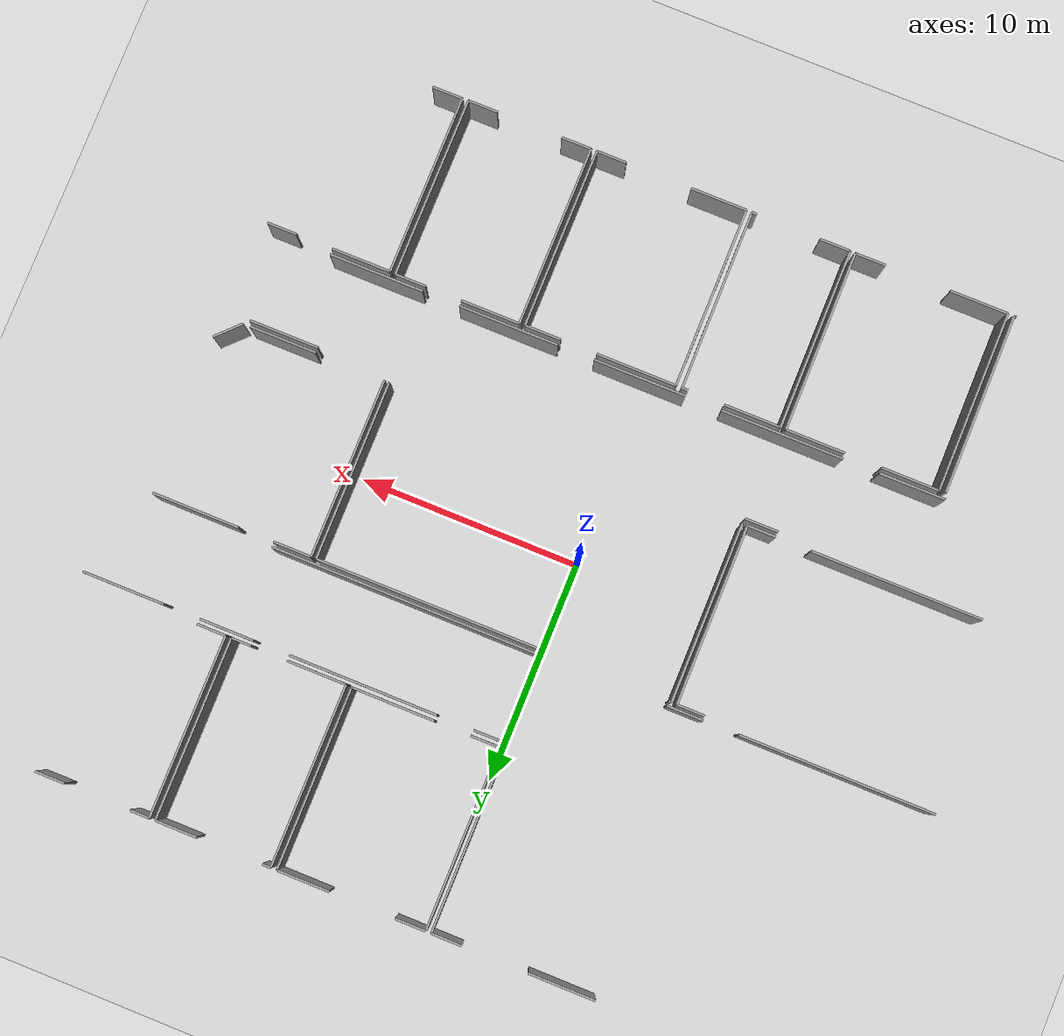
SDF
<sdf version="1.6">
 <world name="default">
  <model name="ground_plane">
   <static>1</static>
   <link name="link">
    <collision name="collision">
     <geometry><plane><normal>0 0 1</normal><size>100 100</size></plane></geometry>
     <surface><friction><ode><mu>100</mu><mu2>50</mu2></ode></friction></surface>
    </collision>
    <visual name="visual">
     <cast_shadows>0</cast_shadows>
     <geometry><plane><normal>0 0 1</normal><size>100 100</size></plane></geometry>
     <material>
      <script><uri>file://media/materials/scripts/gazebo.material</uri><name>Gazebo/Grey</name></script>
     </material>
    </visual>
   </link>
  </model>
  <model name="50041173">
   <static>1</static>
   <link name="Wall_38">
    <collision name="Wall_38_Collision">
     <geometry><box><size>1.65096854452 0.1 2.5</size></box></geometry>
     <pose>0.825484272259 0 1.25 0 0 0</pose>
    </collision>
    <visual name="Wall_38_Visual">
     <pose>0.825484272259 0 1.25 0 0 0</pose>
     <geometry><box><size>1.65096854452 0.1 2.5</size></box></geometry>
     <material>
      <script><uri>file://media/materials/scripts/gazebo.material</uri><name>Gazebo/Grey</name></script>
      <ambient>1 1 1 1</ambient>
     </material>
    </visual>
    <pose>59.8844855163 -12.4957475437 0 0 0 3.14159265359</pose>
   </link>
   <link name="Wall_39">
    <collision name="Wall_39_Collision">
     <geometry><box><size>8.8579298789 0.1 2.5</size></box></geometry>
     <pose>4.42896493945 0 1.25 0 0 0</pose>
    </collision>
    <visual name="Wall_39_Visual">
     <pose>4.42896493945 0 1.25 0 0 0</pose>
     <geometry><box><size>8.8579298789 0.1 2.5</size></box></geometry>
     <material>
      <script><uri>file://media/materials/scripts/gazebo.material</uri><name>Gazebo/Grey</name></script>
      <ambient>1 1 1 1</ambient>
     </material>
    </visual>
    <pose>56.622915027 -12.4957475437 0 0 0 3.14159265359</pose>
   </link>
   <link name="Wall_43">
    <collision name="Wall_43_Collision">
     <geometry><box><size>3.01200842875 0.1 2.5</size></box></geometry>
     <pose>1.50600421437 0 1.25 0 0 0</pose>
    </collision>
    <visual name="Wall_43_Visual">
     <pose>1.50600421437 0 1.25 0 0 0</pose>
     <geometry><box><size>3.01200842875 0.1 2.5</size></box></geometry>
     <material>
      <script><uri>file://media/materials/scripts/gazebo.material</uri><name>Gazebo/Grey</name></script>
      <ambient>1 1 1 1</ambient>
     </material>
    </visual>
    <pose>58.1233339257 -0.0191677879611 0 0 0 0.0</pose>
   </link>
   <link name="Wall_44">
    <collision name="Wall_44_Collision">
     <geometry><box><size>1.38617380487 0.1 2.5</size></box></geometry>
     <pose>0.693086902435 0 1.25 0 0 0</pose>
    </collision>
    <visual name="Wall_44_Visual">
     <pose>0.693086902435 0 1.25 0 0 0</pose>
     <geometry><box><size>1.38617380487 0.1 2.5</size></box></geometry>
     <material>
      <script><uri>file://media/materials/scripts/gazebo.material</uri><name>Gazebo/Grey</name></script>
      <ambient>1 1 1 1</ambient>
     </material>
    </visual>
    <pose>64.1182817538 -0.0191677879611 0 0 0 0.0</pose>
   </link>
   <link name="Wall_45">
    <collision name="Wall_45_Collision">
     <geometry><box><size>8.43700017771 0.1 2.5</size></box></geometry>
     <pose>4.21850008886 0 1.25 0 0 0</pose>
    </collision>
    <visual name="Wall_45_Visual">
     <pose>4.21850008886 0 1.25 0 0 0</pose>
     <geometry><box><size>8.43700017771 0.1 2.5</size></box></geometry>
     <material>
      <script><uri>file://media/materials/scripts/gazebo.material</uri><name>Gazebo/Grey</name></script>
      <ambient>1 1 1 1</ambient>
     </material>
    </visual>
    <pose>65.5044555587 -0.0191677879611 0 0 0 -1.57079632679</pose>
   </link>
   <link name="Wall_54">
    <collision name="Wall_54_Collision">
     <geometry><box><size>12.1599939069 0.1 2.5</size></box></geometry>
     <pose>6.07999695346 0 1.25 0 0 0</pose>
    </collision>
    <visual name="Wall_54_Visual">
     <pose>6.07999695346 0 1.25 0 0 0</pose>
     <geometry><box><size>12.1599939069 0.1 2.5</size></box></geometry>
     <material>
      <script><uri>file://media/materials/scripts/gazebo.material</uri><name>Gazebo/Grey</name></script>
      <ambient>1 1 1 1</ambient>
     </material>
    </visual>
    <pose>77.9039833456 -12.4624895275 0 0 0 3.14159265359</pose>
   </link>
   <link name="Wall_55">
    <collision name="Wall_55_Collision">
     <geometry><box><size>1.31432633476 0.1 2.5</size></box></geometry>
     <pose>0.657163167382 0 1.25 0 0 0</pose>
    </collision>
    <visual name="Wall_55_Visual">
     <pose>0.657163167382 0 1.25 0 0 0</pose>
     <geometry><box><size>1.31432633476 0.1 2.5</size></box></geometry>
     <material>
      <script><uri>file://media/materials/scripts/gazebo.material</uri><name>Gazebo/Grey</name></script>
      <ambient>1 1 1 1</ambient>
     </material>
    </visual>
    <pose>65.7439894387 -8.49577293153 0 0 0 0.0</pose>
   </link>
   <link name="Wall_56">
    <collision name="Wall_56_Collision">
     <geometry><box><size>6.72840133032 0.1 2.5</size></box></geometry>
     <pose>3.36420066516 0 1.25 0 0 0</pose>
    </collision>
    <visual name="Wall_56_Visual">
     <pose>3.36420066516 0 1.25 0 0 0</pose>
     <geometry><box><size>6.72840133032 0.1 2.5</size></box></geometry>
     <material>
      <script><uri>file://media/materials/scripts/gazebo.material</uri><name>Gazebo/Grey</name></script>
      <ambient>1 1 1 1</ambient>
     </material>
    </visual>
    <pose>68.7246439361 -8.49577293153 0 0 0 0.0</pose>
   </link>
   <link name="Wall_57">
    <collision name="Wall_57_Collision">
     <geometry><box><size>2.46655157531 0.1 2.5</size></box></geometry>
     <pose>1.23327578766 0 1.25 0 0 0</pose>
    </collision>
    <visual name="Wall_57_Visual">
     <pose>1.23327578766 0 1.25 0 0 0</pose>
     <geometry><box><size>2.46655157531 0.1 2.5</size></box></geometry>
     <material>
      <script><uri>file://media/materials/scripts/gazebo.material</uri><name>Gazebo/Grey</name></script>
      <ambient>1 1 1 1</ambient>
     </material>
    </visual>
    <pose>77.0877656198 -8.49577293153 0 0 0 0.0</pose>
   </link>
   <link name="Wall_58">
    <collision name="Wall_58_Collision">
     <geometry><box><size>3.72261291223 0.1 2.5</size></box></geometry>
     <pose>1.86130645612 0 1.25 0 0 0</pose>
    </collision>
    <visual name="Wall_58_Visual">
     <pose>1.86130645612 0 1.25 0 0 0</pose>
     <geometry><box><size>3.72261291223 0.1 2.5</size></box></geometry>
     <material>
      <script><uri>file://media/materials/scripts/gazebo.material</uri><name>Gazebo/Grey</name></script>
      <ambient>1 1 1 1</ambient>
     </material>
    </visual>
    <pose>81.2008428749 -8.49577293153 0 0 0 0.0</pose>
   </link>
   <link name="Wall_66">
    <collision name="Wall_66_Collision">
     <geometry><box><size>3.76285257305 0.1 2.5</size></box></geometry>
     <pose>1.88142628653 0 1.25 0 0 0</pose>
    </collision>
    <visual name="Wall_66_Visual">
     <pose>1.88142628653 0 1.25 0 0 0</pose>
     <geometry><box><size>3.76285257305 0.1 2.5</size></box></geometry>
     <material>
      <script><uri>file://media/materials/scripts/gazebo.material</uri><name>Gazebo/Grey</name></script>
      <ambient>1 1 1 1</ambient>
     </material>
    </visual>
    <pose>72.4872426312 -8.23542105664 0 0 0 3.14159265359</pose>
   </link>
   <link name="Wall_67">
    <collision name="Wall_67_Collision">
     <geometry><box><size>1.3135647008 0.1 2.5</size></box></geometry>
     <pose>0.656782350402 0 1.25 0 0 0</pose>
    </collision>
    <visual name="Wall_67_Visual">
     <pose>0.656782350402 0 1.25 0 0 0</pose>
     <geometry><box><size>1.3135647008 0.1 2.5</size></box></geometry>
     <material>
      <script><uri>file://media/materials/scripts/gazebo.material</uri><name>Gazebo/Grey</name></script>
      <ambient>1 1 1 1</ambient>
     </material>
    </visual>
    <pose>67.0650435401 -8.23542105664 0 0 0 3.14159265359</pose>
   </link>
   <link name="Wall_68">
    <collision name="Wall_68_Collision">
     <geometry><box><size>8.22183858438 0.1 2.5</size></box></geometry>
     <pose>4.11091929219 0 1.25 0 0 0</pose>
    </collision>
    <visual name="Wall_68_Visual">
     <pose>4.11091929219 0 1.25 0 0 0</pose>
     <geometry><box><size>8.22183858438 0.1 2.5</size></box></geometry>
     <material>
      <script><uri>file://media/materials/scripts/gazebo.material</uri><name>Gazebo/Grey</name></script>
      <ambient>1 1 1 1</ambient>
     </material>
    </visual>
    <pose>65.7514788393 -8.23542105664 0 0 0 1.57079632679</pose>
   </link>
   <link name="Wall_69">
    <collision name="Wall_69_Collision">
     <geometry><box><size>1.38883952372 0.1 2.5</size></box></geometry>
     <pose>0.694419761862 0 1.25 0 0 0</pose>
    </collision>
    <visual name="Wall_69_Visual">
     <pose>0.694419761862 0 1.25 0 0 0</pose>
     <geometry><box><size>1.38883952372 0.1 2.5</size></box></geometry>
     <material>
      <script><uri>file://media/materials/scripts/gazebo.material</uri><name>Gazebo/Grey</name></script>
      <ambient>1 1 1 1</ambient>
     </material>
    </visual>
    <pose>65.7514788393 -0.0135824722638 0 0 0 0.0</pose>
   </link>
   <link name="Wall_70">
    <collision name="Wall_70_Collision">
     <geometry><box><size>2.36665058773 0.1 2.5</size></box></geometry>
     <pose>1.18332529386 0 1.25 0 0 0</pose>
    </collision>
    <visual name="Wall_70_Visual">
     <pose>1.18332529386 0 1.25 0 0 0</pose>
     <geometry><box><size>2.36665058773 0.1 2.5</size></box></geometry>
     <material>
      <script><uri>file://media/materials/scripts/gazebo.material</uri><name>Gazebo/Grey</name></script>
      <ambient>1 1 1 1</ambient>
     </material>
    </visual>
    <pose>70.1065018152 -0.0135824722638 0 0 0 0.0</pose>
   </link>
   <link name="Wall_71">
    <collision name="Wall_71_Collision">
     <geometry><box><size>8.22185065798 0.1 2.5</size></box></geometry>
     <pose>4.11092532899 0 1.25 0 0 0</pose>
    </collision>
    <visual name="Wall_71_Visual">
     <pose>4.11092532899 0 1.25 0 0 0</pose>
     <geometry><box><size>8.22185065798 0.1 2.5</size></box></geometry>
     <material>
      <script><uri>file://media/materials/scripts/gazebo.material</uri><name>Gazebo/Grey</name></script>
      <ambient>1 1 1 1</ambient>
     </material>
    </visual>
    <pose>72.473152403 -0.0135824722638 0 0 0 -1.5690825721</pose>
   </link>
   <link name="Wall_72">
    <collision name="Wall_72_Collision">
     <geometry><box><size>0.894031328544 0.1 2.5</size></box></geometry>
     <pose>0.447015664272 0 1.25 0 0 0</pose>
    </collision>
    <visual name="Wall_72_Visual">
     <pose>0.447015664272 0 1.25 0 0 0</pose>
     <geometry><box><size>0.894031328544 0.1 2.5</size></box></geometry>
     <material>
      <script><uri>file://media/materials/scripts/gazebo.material</uri><name>Gazebo/Grey</name></script>
      <ambient>1 1 1 1</ambient>
     </material>
    </visual>
    <pose>77.9928406408 -8.25319251568 0 0 0 3.14159265359</pose>
   </link>
   <link name="Wall_73">
    <collision name="Wall_73_Collision">
     <geometry><box><size>2.70380055345 0.1 2.5</size></box></geometry>
     <pose>1.35190027673 0 1.25 0 0 0</pose>
    </collision>
    <visual name="Wall_73_Visual">
     <pose>1.35190027673 0 1.25 0 0 0</pose>
     <geometry><box><size>2.70380055345 0.1 2.5</size></box></geometry>
     <material>
      <script><uri>file://media/materials/scripts/gazebo.material</uri><name>Gazebo/Grey</name></script>
      <ambient>1 1 1 1</ambient>
     </material>
    </visual>
    <pose>75.4540607784 -8.25319251568 0 0 0 3.14159265359</pose>
   </link>
   <link name="Wall_74">
    <collision name="Wall_74_Collision">
     <geometry><box><size>8.2435451522 0.1 2.5</size></box></geometry>
     <pose>4.1217725761 0 1.25 0 0 0</pose>
    </collision>
    <visual name="Wall_74_Visual">
     <pose>4.1217725761 0 1.25 0 0 0</pose>
     <geometry><box><size>8.2435451522 0.1 2.5</size></box></geometry>
     <material>
      <script><uri>file://media/materials/scripts/gazebo.material</uri><name>Gazebo/Grey</name></script>
      <ambient>1 1 1 1</ambient>
     </material>
    </visual>
    <pose>72.7502602249 -8.25319251568 0 0 0 1.57079632679</pose>
   </link>
   <link name="Wall_75">
    <collision name="Wall_75_Collision">
     <geometry><box><size>0.387925562974 0.1 2.5</size></box></geometry>
     <pose>0.193962781487 0 1.25 0 0 0</pose>
    </collision>
    <visual name="Wall_75_Visual">
     <pose>0.193962781487 0 1.25 0 0 0</pose>
     <geometry><box><size>0.387925562974 0.1 2.5</size></box></geometry>
     <material>
      <script><uri>file://media/materials/scripts/gazebo.material</uri><name>Gazebo/Grey</name></script>
      <ambient>1 1 1 1</ambient>
     </material>
    </visual>
    <pose>72.7502602249 -0.00964736347711 0 0 0 0.0</pose>
   </link>
   <link name="Wall_76">
    <collision name="Wall_76_Collision">
     <geometry><box><size>1.88237832898 0.1 2.5</size></box></geometry>
     <pose>0.941189164488 0 1.25 0 0 0</pose>
    </collision>
    <visual name="Wall_76_Visual">
     <pose>0.941189164488 0 1.25 0 0 0</pose>
     <geometry><box><size>1.88237832898 0.1 2.5</size></box></geometry>
     <material>
      <script><uri>file://media/materials/scripts/gazebo.material</uri><name>Gazebo/Grey</name></script>
      <ambient>1 1 1 1</ambient>
     </material>
    </visual>
    <pose>76.1042423012 -0.00964736347711 0 0 0 0.0</pose>
   </link>
   <link name="Wall_77">
    <collision name="Wall_77_Collision">
     <geometry><box><size>8.2435474988 0.1 2.5</size></box></geometry>
     <pose>4.1217737494 0 1.25 0 0 0</pose>
    </collision>
    <visual name="Wall_77_Visual">
     <pose>4.1217737494 0 1.25 0 0 0</pose>
     <geometry><box><size>8.2435474988 0.1 2.5</size></box></geometry>
     <material>
      <script><uri>file://media/materials/scripts/gazebo.material</uri><name>Gazebo/Grey</name></script>
      <ambient>1 1 1 1</ambient>
     </material>
    </visual>
    <pose>77.9866206301 -0.00964736347711 0 0 0 -1.5700417959</pose>
   </link>
   <link name="Wall_79">
    <collision name="Wall_79_Collision">
     <geometry><box><size>1.3135647008 0.1 2.5</size></box></geometry>
     <pose>0.656782350402 0 1.25 0 0 0</pose>
    </collision>
    <visual name="Wall_79_Visual">
     <pose>0.656782350402 0 1.25 0 0 0</pose>
     <geometry><box><size>1.3135647008 0.1 2.5</size></box></geometry>
     <material>
      <script><uri>file://media/materials/scripts/gazebo.material</uri><name>Gazebo/Grey</name></script>
      <ambient>1 1 1 1</ambient>
     </material>
    </visual>
    <pose>79.5713270202 -8.25319251568 0 0 0 3.14159265359</pose>
   </link>
   <link name="Wall_80">
    <collision name="Wall_80_Collision">
     <geometry><box><size>8.24989210186 0.1 2.5</size></box></geometry>
     <pose>4.12494605093 0 1.25 0 0 0</pose>
    </collision>
    <visual name="Wall_80_Visual">
     <pose>4.12494605093 0 1.25 0 0 0</pose>
     <geometry><box><size>8.24989210186 0.1 2.5</size></box></geometry>
     <material>
      <script><uri>file://media/materials/scripts/gazebo.material</uri><name>Gazebo/Grey</name></script>
      <ambient>1 1 1 1</ambient>
     </material>
    </visual>
    <pose>78.2577623194 -8.25319251568 0 0 0 1.57079632679</pose>
   </link>
   <link name="Wall_81">
    <collision name="Wall_81_Collision">
     <geometry><box><size>0.873213333672 0.1 2.5</size></box></geometry>
     <pose>0.436606666836 0 1.25 0 0 0</pose>
    </collision>
    <visual name="Wall_81_Visual">
     <pose>0.436606666836 0 1.25 0 0 0</pose>
     <geometry><box><size>0.873213333672 0.1 2.5</size></box></geometry>
     <material>
      <script><uri>file://media/materials/scripts/gazebo.material</uri><name>Gazebo/Grey</name></script>
      <ambient>1 1 1 1</ambient>
     </material>
    </visual>
    <pose>78.2577623194 -0.00330041382112 0 0 0 0.0</pose>
   </link>
   <link name="Wall_82">
    <collision name="Wall_82_Collision">
     <geometry><box><size>1.37170275965 0.1 2.5</size></box></geometry>
     <pose>0.685851379827 0 1.25 0 0 0</pose>
    </collision>
    <visual name="Wall_82_Visual">
     <pose>0.685851379827 0 1.25 0 0 0</pose>
     <geometry><box><size>1.37170275965 0.1 2.5</size></box></geometry>
     <material>
      <script><uri>file://media/materials/scripts/gazebo.material</uri><name>Gazebo/Grey</name></script>
      <ambient>1 1 1 1</ambient>
     </material>
    </visual>
    <pose>82.1102338216 -0.00330041382112 0 0 0 0.0</pose>
   </link>
   <link name="Wall_133">
    <collision name="Wall_133_Collision">
     <geometry><box><size>4.31592576608 0.1 2.5</size></box></geometry>
     <pose>2.15796288304 0 1.25 0 0 0</pose>
    </collision>
    <visual name="Wall_133_Visual">
     <pose>2.15796288304 0 1.25 0 0 0</pose>
     <geometry><box><size>4.31592576608 0.1 2.5</size></box></geometry>
     <material>
      <script><uri>file://media/materials/scripts/gazebo.material</uri><name>Gazebo/Grey</name></script>
      <ambient>1 1 1 1</ambient>
     </material>
    </visual>
    <pose>80.443270964 -25.056107035 0 0 0 3.14159265359</pose>
   </link>
   <link name="Wall_134">
    <collision name="Wall_134_Collision">
     <geometry><box><size>4.55926781589 0.1 2.5</size></box></geometry>
     <pose>2.27963390794 0 1.25 0 0 0</pose>
    </collision>
    <visual name="Wall_134_Visual">
     <pose>2.27963390794 0 1.25 0 0 0</pose>
     <geometry><box><size>4.55926781589 0.1 2.5</size></box></geometry>
     <material>
      <script><uri>file://media/materials/scripts/gazebo.material</uri><name>Gazebo/Grey</name></script>
      <ambient>1 1 1 1</ambient>
     </material>
    </visual>
    <pose>74.4452766001 -25.056107035 0 0 0 3.14159265359</pose>
   </link>
   <link name="Wall_135">
    <collision name="Wall_135_Collision">
     <geometry><box><size>4.206631293 0.1 2.5</size></box></geometry>
     <pose>2.1033156465 0 1.25 0 0 0</pose>
    </collision>
    <visual name="Wall_135_Visual">
     <pose>2.1033156465 0 1.25 0 0 0</pose>
     <geometry><box><size>4.206631293 0.1 2.5</size></box></geometry>
     <material>
      <script><uri>file://media/materials/scripts/gazebo.material</uri><name>Gazebo/Grey</name></script>
      <ambient>1 1 1 1</ambient>
     </material>
    </visual>
    <pose>68.2222194014 -25.056107035 0 0 0 3.14159265359</pose>
   </link>
   <link name="Wall_136">
    <collision name="Wall_136_Collision">
     <geometry><box><size>5.55738911879 0.1 2.5</size></box></geometry>
     <pose>2.77869455939 0 1.25 0 0 0</pose>
    </collision>
    <visual name="Wall_136_Visual">
     <pose>2.77869455939 0 1.25 0 0 0</pose>
     <geometry><box><size>5.55738911879 0.1 2.5</size></box></geometry>
     <material>
      <script><uri>file://media/materials/scripts/gazebo.material</uri><name>Gazebo/Grey</name></script>
      <ambient>1 1 1 1</ambient>
     </material>
    </visual>
    <pose>62.360811394 -25.056107035 0 0 0 3.14159265359</pose>
   </link>
   <link name="Wall_137">
    <collision name="Wall_137_Collision">
     <geometry><box><size>3.01340475767 0.1 2.5</size></box></geometry>
     <pose>1.50670237884 0 1.25 0 0 0</pose>
    </collision>
    <visual name="Wall_137_Visual">
     <pose>1.50670237884 0 1.25 0 0 0</pose>
     <geometry><box><size>3.01340475767 0.1 2.5</size></box></geometry>
     <material>
      <script><uri>file://media/materials/scripts/gazebo.material</uri><name>Gazebo/Grey</name></script>
      <ambient>1 1 1 1</ambient>
     </material>
    </visual>
    <pose>55.1438218792 -25.056107035 0 0 0 3.14159265359</pose>
   </link>
   <link name="Wall_154">
    <collision name="Wall_154_Collision">
     <geometry><box><size>1.50689278733 0.1 2.5</size></box></geometry>
     <pose>0.753446393663 0 1.25 0 0 0</pose>
    </collision>
    <visual name="Wall_154_Visual">
     <pose>0.753446393663 0 1.25 0 0 0</pose>
     <geometry><box><size>1.50689278733 0.1 2.5</size></box></geometry>
     <material>
      <script><uri>file://media/materials/scripts/gazebo.material</uri><name>Gazebo/Grey</name></script>
      <ambient>1 1 1 1</ambient>
     </material>
    </visual>
    <pose>58.2239965473 -21.1053847521 0 0 0 0.0</pose>
   </link>
   <link name="Wall_155">
    <collision name="Wall_155_Collision">
     <geometry><box><size>3.14999111427 0.1 2.5</size></box></geometry>
     <pose>1.57499555714 0 1.25 0 0 0</pose>
    </collision>
    <visual name="Wall_155_Visual">
     <pose>1.57499555714 0 1.25 0 0 0</pose>
     <geometry><box><size>3.14999111427 0.1 2.5</size></box></geometry>
     <material>
      <script><uri>file://media/materials/scripts/gazebo.material</uri><name>Gazebo/Grey</name></script>
      <ambient>1 1 1 1</ambient>
     </material>
    </visual>
    <pose>79.3812993475 -21.1053847521 0 0 0 0.0</pose>
   </link>
   <link name="Wall_194">
    <collision name="Wall_194_Collision">
     <geometry><box><size>1.38223869608 0.1 2.5</size></box></geometry>
     <pose>0.691119348041 0 1.25 0 0 0</pose>
    </collision>
    <visual name="Wall_194_Visual">
     <pose>0.691119348041 0 1.25 0 0 0</pose>
     <geometry><box><size>1.38223869608 0.1 2.5</size></box></geometry>
     <material>
      <script><uri>file://media/materials/scripts/gazebo.material</uri><name>Gazebo/Grey</name></script>
      <ambient>1 1 1 1</ambient>
     </material>
    </visual>
    <pose>79.1581405976 -33.5394399452 0 0 0 3.14159265359</pose>
   </link>
   <link name="Wall_195">
    <collision name="Wall_195_Collision">
     <geometry><box><size>8.22018837747 0.1 2.5</size></box></geometry>
     <pose>4.11009418873 0 1.25 0 0 0</pose>
    </collision>
    <visual name="Wall_195_Visual">
     <pose>4.11009418873 0 1.25 0 0 0</pose>
     <geometry><box><size>8.22018837747 0.1 2.5</size></box></geometry>
     <material>
      <script><uri>file://media/materials/scripts/gazebo.material</uri><name>Gazebo/Grey</name></script>
      <ambient>1 1 1 1</ambient>
     </material>
    </visual>
    <pose>77.7759019015 -33.5394399452 0 0 0 1.57079632679</pose>
   </link>
   <link name="Wall_196">
    <collision name="Wall_196_Collision">
     <geometry><box><size>2.68691766737 0.1 2.5</size></box></geometry>
     <pose>1.34345883368 0 1.25 0 0 0</pose>
    </collision>
    <visual name="Wall_196_Visual">
     <pose>1.34345883368 0 1.25 0 0 0</pose>
     <geometry><box><size>2.68691766737 0.1 2.5</size></box></geometry>
     <material>
      <script><uri>file://media/materials/scripts/gazebo.material</uri><name>Gazebo/Grey</name></script>
      <ambient>1 1 1 1</ambient>
     </material>
    </visual>
    <pose>77.7759019015 -25.3192515677 0 0 0 0.0</pose>
   </link>
   <link name="Wall_197">
    <collision name="Wall_197_Collision">
     <geometry><box><size>1.34999619183 0.1 2.5</size></box></geometry>
     <pose>0.674998095915 0 1.25 0 0 0</pose>
    </collision>
    <visual name="Wall_197_Visual">
     <pose>0.674998095915 0 1.25 0 0 0</pose>
     <geometry><box><size>1.34999619183 0.1 2.5</size></box></geometry>
     <material>
      <script><uri>file://media/materials/scripts/gazebo.material</uri><name>Gazebo/Grey</name></script>
      <ambient>1 1 1 1</ambient>
     </material>
    </visual>
    <pose>82.121150575 -25.3192515677 0 0 0 0.0</pose>
   </link>
   <link name="Wall_199">
    <collision name="Wall_199_Collision">
     <geometry><box><size>1.36764071187 0.1 2.5</size></box></geometry>
     <pose>0.683820355937 0 1.25 0 0 0</pose>
    </collision>
    <visual name="Wall_199_Visual">
     <pose>0.683820355937 0 1.25 0 0 0</pose>
     <geometry><box><size>1.36764071187 0.1 2.5</size></box></geometry>
     <material>
      <script><uri>file://media/materials/scripts/gazebo.material</uri><name>Gazebo/Grey</name></script>
      <ambient>1 1 1 1</ambient>
     </material>
    </visual>
    <pose>77.4975246896 -33.5560689533 0 0 0 3.14159265359</pose>
   </link>
   <link name="Wall_200">
    <collision name="Wall_200_Collision">
     <geometry><box><size>1.37170275965 0.1 2.5</size></box></geometry>
     <pose>0.685851379827 0 1.25 0 0 0</pose>
    </collision>
    <visual name="Wall_200_Visual">
     <pose>0.685851379827 0 1.25 0 0 0</pose>
     <geometry><box><size>1.37170275965 0.1 2.5</size></box></geometry>
     <material>
      <script><uri>file://media/materials/scripts/gazebo.material</uri><name>Gazebo/Grey</name></script>
      <ambient>1 1 1 1</ambient>
     </material>
    </visual>
    <pose>73.1469445784 -33.5560689533 0 0 0 3.14159265359</pose>
   </link>
   <link name="Wall_201">
    <collision name="Wall_201_Collision">
     <geometry><box><size>8.25611211252 0.1 2.5</size></box></geometry>
     <pose>4.12805605626 0 1.25 0 0 0</pose>
    </collision>
    <visual name="Wall_201_Visual">
     <pose>4.12805605626 0 1.25 0 0 0</pose>
     <geometry><box><size>8.25611211252 0.1 2.5</size></box></geometry>
     <material>
      <script><uri>file://media/materials/scripts/gazebo.material</uri><name>Gazebo/Grey</name></script>
      <ambient>1 1 1 1</ambient>
     </material>
    </visual>
    <pose>71.7752418188 -33.5560689533 0 0 0 1.57079632679</pose>
   </link>
   <link name="Wall_202">
    <collision name="Wall_202_Collision">
     <geometry><box><size>2.68539439945 0.1 2.5</size></box></geometry>
     <pose>1.34269719973 0 1.25 0 0 0</pose>
    </collision>
    <visual name="Wall_202_Visual">
     <pose>1.34269719973 0 1.25 0 0 0</pose>
     <geometry><box><size>2.68539439945 0.1 2.5</size></box></geometry>
     <material>
      <script><uri>file://media/materials/scripts/gazebo.material</uri><name>Gazebo/Grey</name></script>
      <ambient>1 1 1 1</ambient>
     </material>
    </visual>
    <pose>71.7752418188 -25.2999568407 0 0 0 0.0</pose>
   </link>
   <link name="Wall_203">
    <collision name="Wall_203_Collision">
     <geometry><box><size>1.41295793242 0.1 2.5</size></box></geometry>
     <pose>0.706478966209 0 1.25 0 0 0</pose>
    </collision>
    <visual name="Wall_203_Visual">
     <pose>0.706478966209 0 1.25 0 0 0</pose>
     <geometry><box><size>1.41295793242 0.1 2.5</size></box></geometry>
     <material>
      <script><uri>file://media/materials/scripts/gazebo.material</uri><name>Gazebo/Grey</name></script>
      <ambient>1 1 1 1</ambient>
     </material>
    </visual>
    <pose>76.1052578131 -25.2999568407 0 0 0 0.0</pose>
   </link>
   <link name="Wall_204">
    <collision name="Wall_204_Collision">
     <geometry><box><size>8.25613803992 0.1 2.5</size></box></geometry>
     <pose>4.12806901996 0 1.25 0 0 0</pose>
    </collision>
    <visual name="Wall_204_Visual">
     <pose>4.12806901996 0 1.25 0 0 0</pose>
     <geometry><box><size>8.25613803992 0.1 2.5</size></box></geometry>
     <material>
      <script><uri>file://media/materials/scripts/gazebo.material</uri><name>Gazebo/Grey</name></script>
      <ambient>1 1 1 1</ambient>
     </material>
    </visual>
    <pose>77.5182157455 -25.2999568407 0 0 0 -1.57330247161</pose>
   </link>
   <link name="Wall_205">
    <collision name="Wall_205_Collision">
     <geometry><box><size>1.37094112569 0.1 2.5</size></box></geometry>
     <pose>0.685470562847 0 1.25 0 0 0</pose>
    </collision>
    <visual name="Wall_205_Visual">
     <pose>0.685470562847 0 1.25 0 0 0</pose>
     <geometry><box><size>1.37094112569 0.1 2.5</size></box></geometry>
     <material>
      <script><uri>file://media/materials/scripts/gazebo.material</uri><name>Gazebo/Grey</name></script>
      <ambient>1 1 1 1</ambient>
     </material>
    </visual>
    <pose>71.5062580924 -33.5648277438 0 0 0 3.14159265359</pose>
   </link>
   <link name="Wall_206">
    <collision name="Wall_206_Collision">
     <geometry><box><size>2.5627713321 0.1 2.5</size></box></geometry>
     <pose>1.28138566605 0 1.25 0 0 0</pose>
    </collision>
    <visual name="Wall_206_Visual">
     <pose>1.28138566605 0 1.25 0 0 0</pose>
     <geometry><box><size>2.5627713321 0.1 2.5</size></box></geometry>
     <material>
      <script><uri>file://media/materials/scripts/gazebo.material</uri><name>Gazebo/Grey</name></script>
      <ambient>1 1 1 1</ambient>
     </material>
    </visual>
    <pose>67.1313056945 -33.5648277438 0 0 0 3.14159265359</pose>
   </link>
   <link name="Wall_207">
    <collision name="Wall_207_Collision">
     <geometry><box><size>8.24417984717 0.1 2.5</size></box></geometry>
     <pose>4.12208992358 0 1.25 0 0 0</pose>
    </collision>
    <visual name="Wall_207_Visual">
     <pose>4.12208992358 0 1.25 0 0 0</pose>
     <geometry><box><size>8.24417984717 0.1 2.5</size></box></geometry>
     <material>
      <script><uri>file://media/materials/scripts/gazebo.material</uri><name>Gazebo/Grey</name></script>
      <ambient>1 1 1 1</ambient>
     </material>
    </visual>
    <pose>64.5685343624 -33.5648277438 0 0 0 1.57079632679</pose>
   </link>
   <link name="Wall_208">
    <collision name="Wall_208_Collision">
     <geometry><box><size>3.64314910254 0.1 2.5</size></box></geometry>
     <pose>1.82157455127 0 1.25 0 0 0</pose>
    </collision>
    <visual name="Wall_208_Visual">
     <pose>1.82157455127 0 1.25 0 0 0</pose>
     <geometry><box><size>3.64314910254 0.1 2.5</size></box></geometry>
     <material>
      <script><uri>file://media/materials/scripts/gazebo.material</uri><name>Gazebo/Grey</name></script>
      <ambient>1 1 1 1</ambient>
     </material>
    </visual>
    <pose>64.5685343624 -25.3206478966 0 0 0 0.0</pose>
   </link>
   <link name="Wall_209">
    <collision name="Wall_209_Collision">
     <geometry><box><size>1.64144812003 0.1 2.5</size></box></geometry>
     <pose>0.820724060017 0 1.25 0 0 0</pose>
    </collision>
    <visual name="Wall_209_Visual">
     <pose>0.820724060017 0 1.25 0 0 0</pose>
     <geometry><box><size>1.64144812003 0.1 2.5</size></box></geometry>
     <material>
      <script><uri>file://media/materials/scripts/gazebo.material</uri><name>Gazebo/Grey</name></script>
      <ambient>1 1 1 1</ambient>
     </material>
    </visual>
    <pose>69.8763614207 -25.3206478966 0 0 0 0.0</pose>
   </link>
   <link name="Wall_210">
    <collision name="Wall_210_Collision">
     <geometry><box><size>8.2441879399 0.1 2.5</size></box></geometry>
     <pose>4.12209396995 0 1.25 0 0 0</pose>
    </collision>
    <visual name="Wall_210_Visual">
     <pose>4.12209396995 0 1.25 0 0 0</pose>
     <geometry><box><size>8.2441879399 0.1 2.5</size></box></geometry>
     <material>
      <script><uri>file://media/materials/scripts/gazebo.material</uri><name>Gazebo/Grey</name></script>
      <ambient>1 1 1 1</ambient>
     </material>
    </visual>
    <pose>71.5178095407 -25.3206478966 0 0 0 -1.57219748992</pose>
   </link>
   <link name="Wall_211">
    <collision name="Wall_211_Collision">
     <geometry><box><size>0.233567747341 0.1 2.5</size></box></geometry>
     <pose>0.11678387367 0 1.25 0 0 0</pose>
    </collision>
    <visual name="Wall_211_Visual">
     <pose>0.11678387367 0 1.25 0 0 0</pose>
     <geometry><box><size>0.233567747341 0.1 2.5</size></box></geometry>
     <material>
      <script><uri>file://media/materials/scripts/gazebo.material</uri><name>Gazebo/Grey</name></script>
      <ambient>1 1 1 1</ambient>
     </material>
    </visual>
    <pose>64.3145294372 -33.5660971337 0 0 0 3.14159265359</pose>
   </link>
   <link name="Wall_212">
    <collision name="Wall_212_Collision">
     <geometry><box><size>1.40902282363 0.1 2.5</size></box></geometry>
     <pose>0.704511411815 0 1.25 0 0 0</pose>
    </collision>
    <visual name="Wall_212_Visual">
     <pose>0.704511411815 0 1.25 0 0 0</pose>
     <geometry><box><size>1.40902282363 0.1 2.5</size></box></geometry>
     <material>
      <script><uri>file://media/materials/scripts/gazebo.material</uri><name>Gazebo/Grey</name></script>
      <ambient>1 1 1 1</ambient>
     </material>
    </visual>
    <pose>61.1734240524 -33.5660971337 0 0 0 3.14159265359</pose>
   </link>
   <link name="Wall_213">
    <collision name="Wall_213_Collision">
     <geometry><box><size>8.2454492371 0.1 2.5</size></box></geometry>
     <pose>4.12272461855 0 1.25 0 0 0</pose>
    </collision>
    <visual name="Wall_213_Visual">
     <pose>4.12272461855 0 1.25 0 0 0</pose>
     <geometry><box><size>8.2454492371 0.1 2.5</size></box></geometry>
     <material>
      <script><uri>file://media/materials/scripts/gazebo.material</uri><name>Gazebo/Grey</name></script>
      <ambient>1 1 1 1</ambient>
     </material>
    </visual>
    <pose>59.7644012288 -33.5660971337 0 0 0 1.57079632679</pose>
   </link>
   <link name="Wall_214">
    <collision name="Wall_214_Collision">
     <geometry><box><size>2.58688974079 0.1 2.5</size></box></geometry>
     <pose>1.2934448704 0 1.25 0 0 0</pose>
    </collision>
    <visual name="Wall_214_Visual">
     <pose>1.2934448704 0 1.25 0 0 0</pose>
     <geometry><box><size>2.58688974079 0.1 2.5</size></box></geometry>
     <material>
      <script><uri>file://media/materials/scripts/gazebo.material</uri><name>Gazebo/Grey</name></script>
      <ambient>1 1 1 1</ambient>
     </material>
    </visual>
    <pose>59.7644012288 -25.3206478966 0 0 0 0.0</pose>
   </link>
   <link name="Wall_215">
    <collision name="Wall_215_Collision">
     <geometry><box><size>0.27545761507 0.1 2.5</size></box></geometry>
     <pose>0.137728807535 0 1.25 0 0 0</pose>
    </collision>
    <visual name="Wall_215_Visual">
     <pose>0.137728807535 0 1.25 0 0 0</pose>
     <geometry><box><size>0.27545761507 0.1 2.5</size></box></geometry>
     <material>
      <script><uri>file://media/materials/scripts/gazebo.material</uri><name>Gazebo/Grey</name></script>
      <ambient>1 1 1 1</ambient>
     </material>
    </visual>
    <pose>64.0079717688 -25.3206478966 0 0 0 0.0</pose>
   </link>
   <link name="Wall_216">
    <collision name="Wall_216_Collision">
     <geometry><box><size>8.24550788823 0.1 2.5</size></box></geometry>
     <pose>4.12275394411 0 1.25 0 0 0</pose>
    </collision>
    <visual name="Wall_216_Visual">
     <pose>4.12275394411 0 1.25 0 0 0</pose>
     <geometry><box><size>8.24550788823 0.1 2.5</size></box></geometry>
     <material>
      <script><uri>file://media/materials/scripts/gazebo.material</uri><name>Gazebo/Grey</name></script>
      <ambient>1 1 1 1</ambient>
     </material>
    </visual>
    <pose>64.2834293838 -25.3206478966 0 0 0 -1.5670245607</pose>
   </link>
   <link name="Wall_217">
    <collision name="Wall_217_Collision">
     <geometry><box><size>1.40140648404 0.1 2.5</size></box></geometry>
     <pose>0.700703242022 0 1.25 0 0 0</pose>
    </collision>
    <visual name="Wall_217_Visual">
     <pose>0.700703242022 0 1.25 0 0 0</pose>
     <geometry><box><size>1.40140648404 0.1 2.5</size></box></geometry>
     <material>
      <script><uri>file://media/materials/scripts/gazebo.material</uri><name>Gazebo/Grey</name></script>
      <ambient>1 1 1 1</ambient>
     </material>
    </visual>
    <pose>59.538957577 -33.5560689533 0 0 0 3.14159265359</pose>
   </link>
   <link name="Wall_218">
    <collision name="Wall_218_Collision">
     <geometry><box><size>2.63956942294 0.1 2.5</size></box></geometry>
     <pose>1.31978471147 0 1.25 0 0 0</pose>
    </collision>
    <visual name="Wall_218_Visual">
     <pose>1.31978471147 0 1.25 0 0 0</pose>
     <geometry><box><size>2.63956942294 0.1 2.5</size></box></geometry>
     <material>
      <script><uri>file://media/materials/scripts/gazebo.material</uri><name>Gazebo/Grey</name></script>
      <ambient>1 1 1 1</ambient>
     </material>
    </visual>
    <pose>55.1524537307 -33.5560689533 0 0 0 3.14159265359</pose>
   </link>
   <link name="Wall_219">
    <collision name="Wall_219_Collision">
     <geometry><box><size>8.24506842012 0.1 2.5</size></box></geometry>
     <pose>4.12253421006 0 1.25 0 0 0</pose>
    </collision>
    <visual name="Wall_219_Visual">
     <pose>4.12253421006 0 1.25 0 0 0</pose>
     <geometry><box><size>8.24506842012 0.1 2.5</size></box></geometry>
     <material>
      <script><uri>file://media/materials/scripts/gazebo.material</uri><name>Gazebo/Grey</name></script>
      <ambient>1 1 1 1</ambient>
     </material>
    </visual>
    <pose>52.5128843078 -33.5560689533 0 0 0 1.57079632679</pose>
   </link>
   <link name="Wall_220">
    <collision name="Wall_220_Collision">
     <geometry><box><size>2.62205184188 0.1 2.5</size></box></geometry>
     <pose>1.31102592094 0 1.25 0 0 0</pose>
    </collision>
    <visual name="Wall_220_Visual">
     <pose>1.31102592094 0 1.25 0 0 0</pose>
     <geometry><box><size>2.62205184188 0.1 2.5</size></box></geometry>
     <material>
      <script><uri>file://media/materials/scripts/gazebo.material</uri><name>Gazebo/Grey</name></script>
      <ambient>1 1 1 1</ambient>
     </material>
    </visual>
    <pose>52.5128843078 -25.3110005331 0 0 0 0.0</pose>
   </link>
   <link name="Wall_221">
    <collision name="Wall_221_Collision">
     <geometry><box><size>2.70684708929 0.1 2.5</size></box></geometry>
     <pose>1.35342354464 0 1.25 0 0 0</pose>
    </collision>
    <visual name="Wall_221_Visual">
     <pose>1.35342354464 0 1.25 0 0 0</pose>
     <geometry><box><size>2.70684708929 0.1 2.5</size></box></geometry>
     <material>
      <script><uri>file://media/materials/scripts/gazebo.material</uri><name>Gazebo/Grey</name></script>
      <ambient>1 1 1 1</ambient>
     </material>
    </visual>
    <pose>56.8129426997 -25.3110005331 0 0 0 0.0</pose>
   </link>
   <link name="Wall_222">
    <collision name="Wall_222_Collision">
     <geometry><box><size>8.24509070032 0.1 2.5</size></box></geometry>
     <pose>4.12254535016 0 1.25 0 0 0</pose>
    </collision>
    <visual name="Wall_222_Visual">
     <pose>4.12254535016 0 1.25 0 0 0</pose>
     <geometry><box><size>8.24509070032 0.1 2.5</size></box></geometry>
     <material>
      <script><uri>file://media/materials/scripts/gazebo.material</uri><name>Gazebo/Grey</name></script>
      <ambient>1 1 1 1</ambient>
     </material>
    </visual>
    <pose>59.519789789 -25.3110005331 0 0 0 -1.56847157308</pose>
   </link>
   <link name="Wall_223">
    <collision name="Wall_223_Collision">
     <geometry><box><size>0.100408743558 0.1 2.5</size></box></geometry>
     <pose>0.0502043717789 0 1.25 0 0 0</pose>
    </collision>
    <visual name="Wall_223_Visual">
     <pose>0.0502043717789 0 1.25 0 0 0</pose>
     <geometry><box><size>0.100408743558 0.1 2.5</size></box></geometry>
     <material>
      <script><uri>file://media/materials/scripts/gazebo.material</uri><name>Gazebo/Grey</name></script>
      <ambient>1 1 1 1</ambient>
     </material>
    </visual>
    <pose>52.2365381198 -33.5501028206 0 0 0 3.14159265359</pose>
   </link>
   <link name="Wall_228">
    <collision name="Wall_228_Collision">
     <geometry><box><size>8.20598044814 0.1 2.5</size></box></geometry>
     <pose>4.10299022407 0 1.25 0 0 0</pose>
    </collision>
    <visual name="Wall_228_Visual">
     <pose>4.10299022407 0 1.25 0 0 0</pose>
     <geometry><box><size>8.20598044814 0.1 2.5</size></box></geometry>
     <material>
      <script><uri>file://media/materials/scripts/gazebo.material</uri><name>Gazebo/Grey</name></script>
      <ambient>1 1 1 1</ambient>
     </material>
    </visual>
    <pose>52.2242250374 -25.3441316103 0 0 0 -1.56929582518</pose>
   </link>
   <link name="Wall_315">
    <collision name="Wall_315_Collision">
     <geometry><box><size>1.28766914621 0.1 2.5</size></box></geometry>
     <pose>0.643834573104 0 1.25 0 0 0</pose>
    </collision>
    <visual name="Wall_315_Visual">
     <pose>0.643834573104 0 1.25 0 0 0</pose>
     <geometry><box><size>1.28766914621 0.1 2.5</size></box></geometry>
     <material>
      <script><uri>file://media/materials/scripts/gazebo.material</uri><name>Gazebo/Grey</name></script>
      <ambient>1 1 1 1</ambient>
     </material>
    </visual>
    <pose>59.5293102135 -20.866993323 0 0 0 3.14159265359</pose>
   </link>
   <link name="Wall_316">
    <collision name="Wall_316_Collision">
     <geometry><box><size>7.78377211912 0.1 2.5</size></box></geometry>
     <pose>3.89188605956 0 1.25 0 0 0</pose>
    </collision>
    <visual name="Wall_316_Visual">
     <pose>3.89188605956 0 1.25 0 0 0</pose>
     <geometry><box><size>7.78377211912 0.1 2.5</size></box></geometry>
     <material>
      <script><uri>file://media/materials/scripts/gazebo.material</uri><name>Gazebo/Grey</name></script>
      <ambient>1 1 1 1</ambient>
     </material>
    </visual>
    <pose>56.6282464647 -20.866993323 0 0 0 3.14159265359</pose>
   </link>
   <link name="Wall_320">
    <collision name="Wall_320_Collision">
     <geometry><box><size>1.26697809033 0.1 2.5</size></box></geometry>
     <pose>0.633489045165 0 1.25 0 0 0</pose>
    </collision>
    <visual name="Wall_320_Visual">
     <pose>0.633489045165 0 1.25 0 0 0</pose>
     <geometry><box><size>1.26697809033 0.1 2.5</size></box></geometry>
     <material>
      <script><uri>file://media/materials/scripts/gazebo.material</uri><name>Gazebo/Grey</name></script>
      <ambient>1 1 1 1</ambient>
     </material>
    </visual>
    <pose>58.2431643352 -12.6959303359 0 0 0 0.0</pose>
   </link>
   <link name="Wall_321">
    <collision name="Wall_321_Collision">
     <geometry><box><size>8.17108546912 0.1 2.5</size></box></geometry>
     <pose>4.08554273456 0 1.25 0 0 0</pose>
    </collision>
    <visual name="Wall_321_Visual">
     <pose>4.08554273456 0 1.25 0 0 0</pose>
     <geometry><box><size>8.17108546912 0.1 2.5</size></box></geometry>
     <material>
      <script><uri>file://media/materials/scripts/gazebo.material</uri><name>Gazebo/Grey</name></script>
      <ambient>1 1 1 1</ambient>
     </material>
    </visual>
    <pose>59.5101424256 -12.6959303359 0 0 0 -1.56845051783</pose>
   </link>
   <link name="Wall_322">
    <collision name="Wall_322_Collision">
     <geometry><box><size>8.16141562365 0.1 2.5</size></box></geometry>
     <pose>4.08070781183 0 1.25 0 0 0</pose>
    </collision>
    <visual name="Wall_322_Visual">
     <pose>4.08070781183 0 1.25 0 0 0</pose>
     <geometry><box><size>8.16141562365 0.1 2.5</size></box></geometry>
     <material>
      <script><uri>file://media/materials/scripts/gazebo.material</uri><name>Gazebo/Grey</name></script>
      <ambient>1 1 1 1</ambient>
     </material>
    </visual>
    <pose>59.7562771332 -20.8573459595 0 0 0 1.57079632679</pose>
   </link>
   <link name="Wall_323">
    <collision name="Wall_323_Collision">
     <geometry><box><size>0.11475284978 0.1 2.5</size></box></geometry>
     <pose>0.0573764248902 0 1.25 0 0 0</pose>
    </collision>
    <visual name="Wall_323_Visual">
     <pose>0.0573764248902 0 1.25 0 0 0</pose>
     <geometry><box><size>0.11475284978 0.1 2.5</size></box></geometry>
     <material>
      <script><uri>file://media/materials/scripts/gazebo.material</uri><name>Gazebo/Grey</name></script>
      <ambient>1 1 1 1</ambient>
     </material>
    </visual>
    <pose>59.7562771332 -12.6959303359 0 0 0 0.0</pose>
   </link>
   <link name="Wall_324">
    <collision name="Wall_324_Collision">
     <geometry><box><size>10.4355276854 0.1 2.5</size></box></geometry>
     <pose>5.2177638427 0 1.25 0 0 0</pose>
    </collision>
    <visual name="Wall_324_Visual">
     <pose>5.2177638427 0 1.25 0 0 0</pose>
     <geometry><box><size>10.4355276854 0.1 2.5</size></box></geometry>
     <material>
      <script><uri>file://media/materials/scripts/gazebo.material</uri><name>Gazebo/Grey</name></script>
      <ambient>1 1 1 1</ambient>
     </material>
    </visual>
    <pose>65.5262890655 -12.6959303359 0 0 0 0.0</pose>
   </link>
   <link name="Wall_325">
    <collision name="Wall_325_Collision">
     <geometry><box><size>8.16142132558 0.1 2.5</size></box></geometry>
     <pose>4.08071066279 0 1.25 0 0 0</pose>
    </collision>
    <visual name="Wall_325_Visual">
     <pose>4.08071066279 0 1.25 0 0 0</pose>
     <geometry><box><size>8.16142132558 0.1 2.5</size></box></geometry>
     <material>
      <script><uri>file://media/materials/scripts/gazebo.material</uri><name>Gazebo/Grey</name></script>
      <ambient>1 1 1 1</ambient>
     </material>
    </visual>
    <pose>75.9618167509 -12.6959303359 0 0 0 -1.56961425748</pose>
   </link>
   <link name="Wall_326">
    <collision name="Wall_326_Collision">
     <geometry><box><size>3.04387011602 0.1 2.5</size></box></geometry>
     <pose>1.52193505801 0 1.25 0 0 0</pose>
    </collision>
    <visual name="Wall_326_Visual">
     <pose>1.52193505801 0 1.25 0 0 0</pose>
     <geometry><box><size>3.04387011602 0.1 2.5</size></box></geometry>
     <material>
      <script><uri>file://media/materials/scripts/gazebo.material</uri><name>Gazebo/Grey</name></script>
      <ambient>1 1 1 1</ambient>
     </material>
    </visual>
    <pose>82.4214882328 -20.866993323 0 0 0 3.14159265359</pose>
   </link>
   <link name="Wall_327">
    <collision name="Wall_327_Collision">
     <geometry><box><size>8.17652136383 0.1 2.5</size></box></geometry>
     <pose>4.08826068192 0 1.25 0 0 0</pose>
    </collision>
    <visual name="Wall_327_Visual">
     <pose>4.08826068192 0 1.25 0 0 0</pose>
     <geometry><box><size>8.17652136383 0.1 2.5</size></box></geometry>
     <material>
      <script><uri>file://media/materials/scripts/gazebo.material</uri><name>Gazebo/Grey</name></script>
      <ambient>1 1 1 1</ambient>
     </material>
    </visual>
    <pose>76.1967808271 -20.866993323 0 0 0 1.57079632679</pose>
   </link>
   <link name="Wall_328">
    <collision name="Wall_328_Collision">
     <geometry><box><size>1.72954378126 0.1 2.5</size></box></geometry>
     <pose>0.864771890629 0 1.25 0 0 0</pose>
    </collision>
    <visual name="Wall_328_Visual">
     <pose>0.864771890629 0 1.25 0 0 0</pose>
     <geometry><box><size>1.72954378126 0.1 2.5</size></box></geometry>
     <material>
      <script><uri>file://media/materials/scripts/gazebo.material</uri><name>Gazebo/Grey</name></script>
      <ambient>1 1 1 1</ambient>
     </material>
    </visual>
    <pose>76.1967808271 -12.6904719592 0 0 0 0.0</pose>
   </link>
   <link name="Wall_329">
    <collision name="Wall_329_Collision">
     <geometry><box><size>3.94818350301 0.1 2.5</size></box></geometry>
     <pose>1.9740917515 0 1.25 0 0 0</pose>
    </collision>
    <visual name="Wall_329_Visual">
     <pose>1.9740917515 0 1.25 0 0 0</pose>
     <geometry><box><size>3.94818350301 0.1 2.5</size></box></geometry>
     <material>
      <script><uri>file://media/materials/scripts/gazebo.material</uri><name>Gazebo/Grey</name></script>
      <ambient>1 1 1 1</ambient>
     </material>
    </visual>
    <pose>79.5337530783 -12.6904719592 0 0 0 0.0</pose>
   </link>
   <link name="Wall_335">
    <collision name="Wall_335_Collision">
     <geometry><box><size>1.41581703449 0.1 2.5</size></box></geometry>
     <pose>0.707908517246 0 1.25 0 0 0</pose>
    </collision>
    <visual name="Wall_335_Visual">
     <pose>0.707908517246 0 1.25 0 0 0</pose>
     <geometry><box><size>1.41581703449 0.1 2.5</size></box></geometry>
     <material>
      <script><uri>file://media/materials/scripts/gazebo.material</uri><name>Gazebo/Grey</name></script>
      <ambient>1 1 1 1</ambient>
     </material>
    </visual>
    <pose>82.7392165325 -20.866993323 0 0 0 0.793069350013</pose>
   </link>
   <pose>-65.65 16.778664094 0 0 0 0</pose>
  </model>
 </world>
</sdf>
